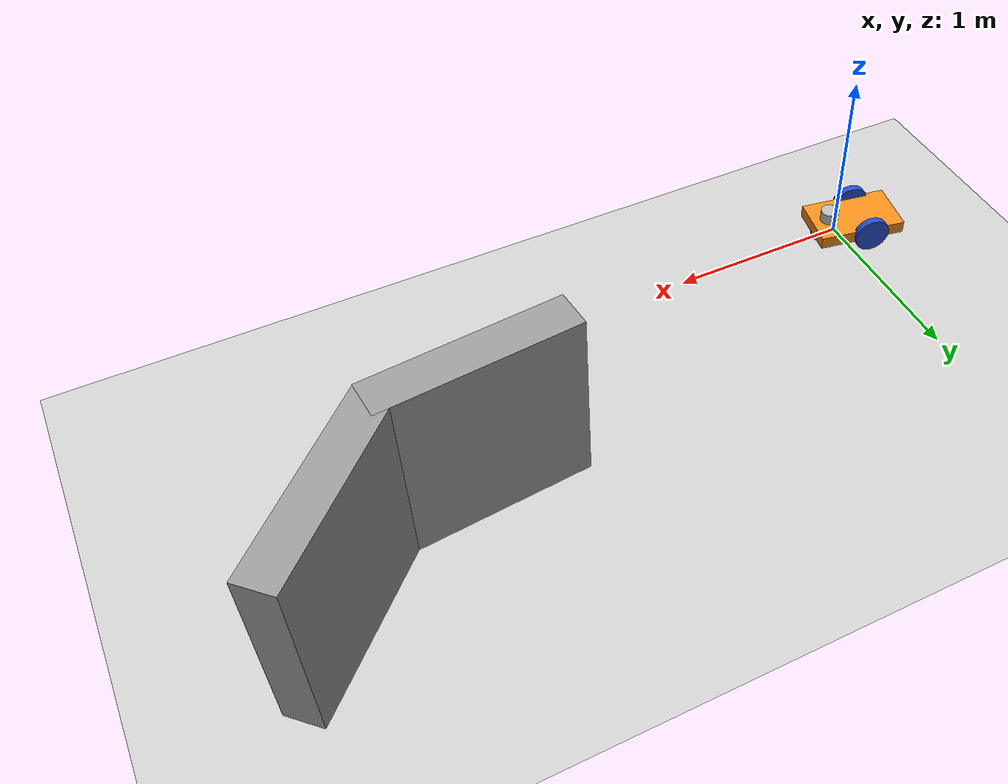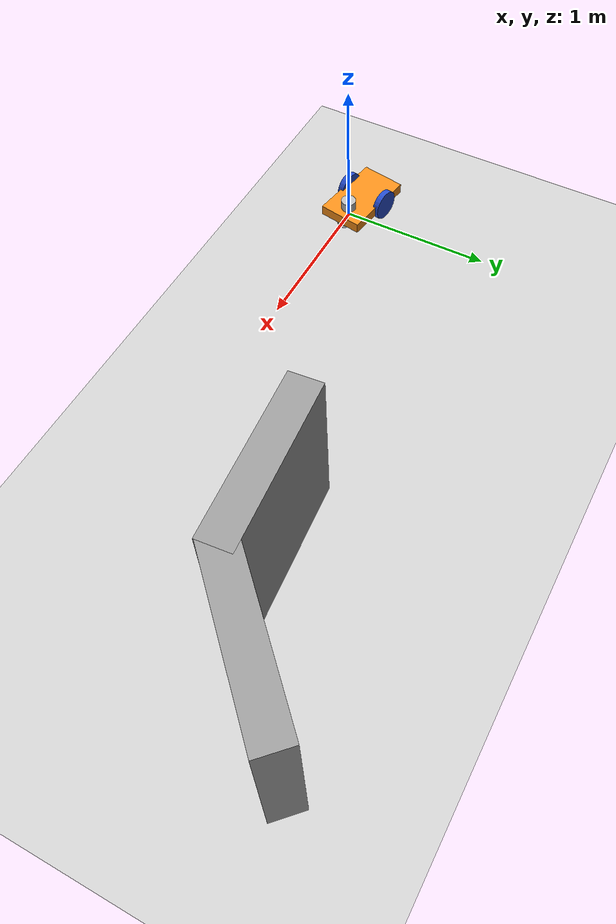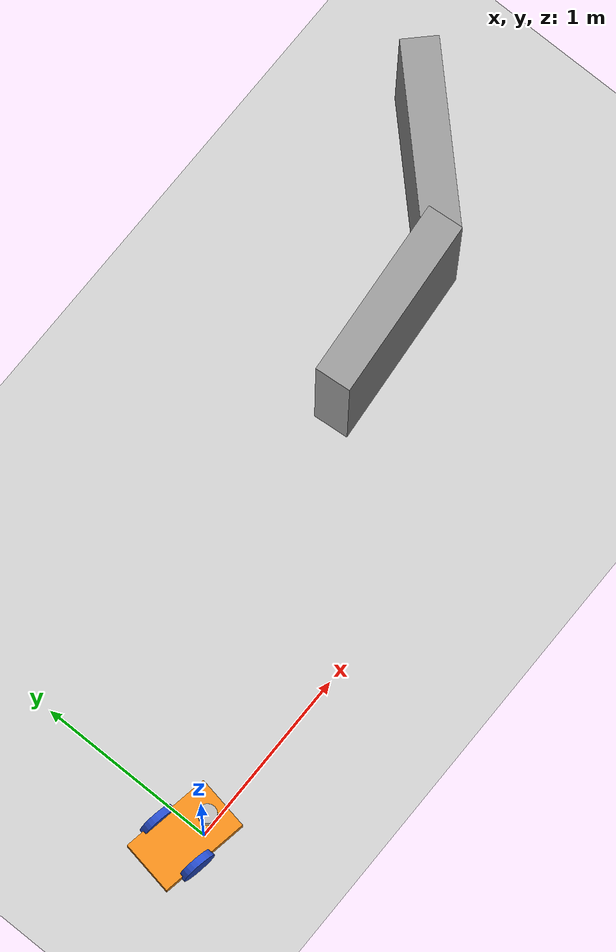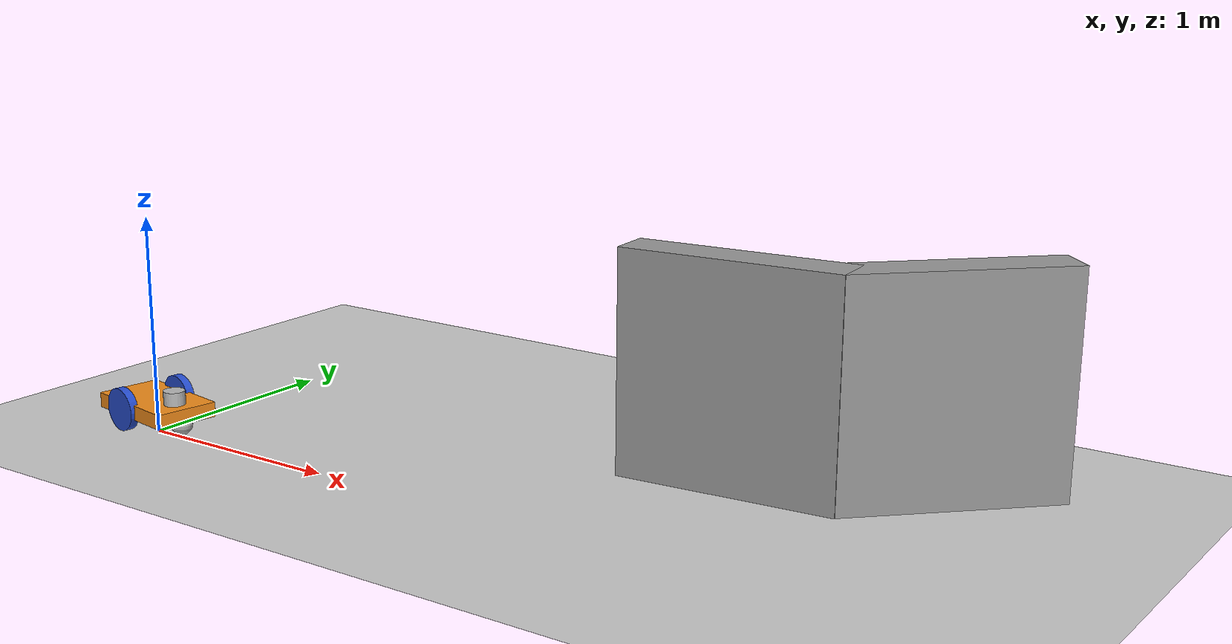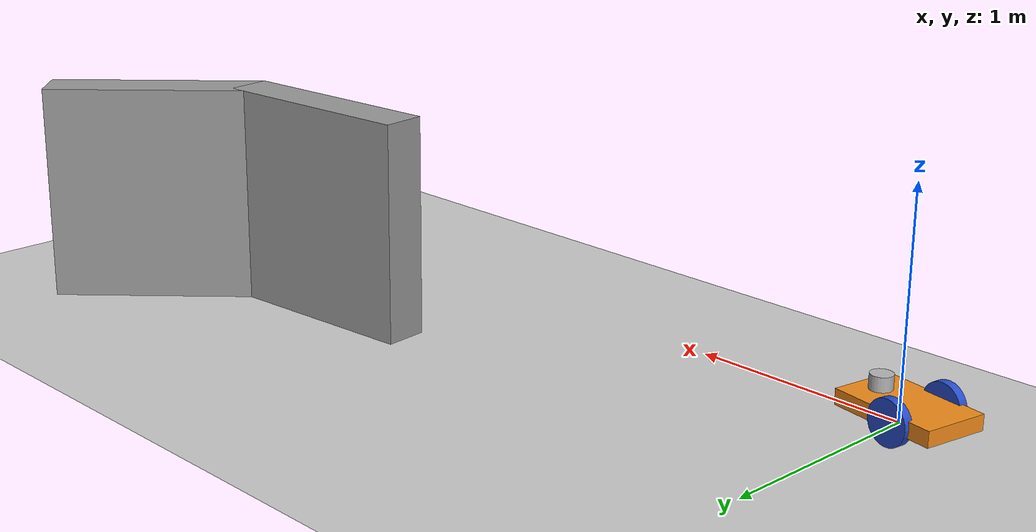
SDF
<sdf version="1.6">
 <world name="default">
  <light name="sun" type="directional">
   <pose>0 0 10 0 -0 0</pose>
   <diffuse>0.8 0.8 0.8 1</diffuse>
   <specular>0.2 0.2 0.2 1</specular>
   <attenuation>
    <range>1000</range>
    <constant>0.9</constant>
    <linear>0.01</linear>
    <quadratic>0.001</quadratic>
   </attenuation>
   <direction>-0.5 0.1 -0.9</direction>
  </light>
  <model name="ground_plane">
   <static>1</static>
   <link name="link">
    <collision name="collision">
     <geometry><plane><normal>0 0 1</normal><size>100 100</size></plane></geometry>
     <surface>
      <contact><collide_bitmask>65535</collide_bitmask></contact>
      <friction><ode><mu>100</mu><mu2>50</mu2></ode></friction>
     </surface>
    </collision>
    <visual name="visual">
     <cast_shadows>0</cast_shadows>
     <geometry><plane><normal>0 0 1</normal><size>100 100</size></plane></geometry>
     <material>
      <script><uri>file://media/materials/scripts/gazebo.material</uri><name>Gazebo/Grey</name></script>
     </material>
    </visual>
   </link>
  </model>
  <gravity>0 0 -9.8</gravity>
  <magnetic_field>6e-06 2.3e-05 -4.2e-05</magnetic_field>
  <atmosphere type="adiabatic"/>
  <physics name="default_physics" default="0" type="ode">
   <max_step_size>0.001</max_step_size>
   <real_time_factor>1</real_time_factor>
   <real_time_update_rate>1000</real_time_update_rate>
  </physics>
  <scene><ambient>0.4 0.4 0.4 1</ambient><background>0.7 0.7 0.7 1</background><shadows>1</shadows></scene>
  <spherical_coordinates>
   <surface_model>EARTH_WGS84</surface_model>
   <latitude_deg>0</latitude_deg>
   <longitude_deg>0</longitude_deg>
   <elevation>0</elevation>
   <heading_deg>0</heading_deg>
  </spherical_coordinates>
  <model name="ag2">
   <link name="link_chassis">
    <inertial>
     <pose>0 0 0.1 0 -0 0</pose>
     <mass>5</mass>
     <inertia>
      <ixx>0.0395417</ixx>
      <ixy>0</ixy>
      <ixz>0</ixz>
      <iyy>0.106208</iyy>
      <iyz>0</iyz>
      <izz>0.106208</izz>
     </inertia>
    </inertial>
    <collision name="link_chassis_fixed_joint_lump__collision_chassis_collision">
     <geometry><box><size>0.5 0.3 0.07</size></box></geometry>
    </collision>
    <collision name="link_chassis_fixed_joint_lump__caster_front_collision_collision_1">
     <pose>0.35 0 -0.05 0 -0 0</pose>
     <geometry><sphere><radius>0.05</radius></sphere></geometry>
    </collision>
    <collision name="link_chassis_fixed_joint_lump__sensor_laser_collision_2">
     <pose>0.15 0 0.05 0 -0 0</pose>
     <geometry><cylinder><length>0.1</length><radius>0.05</radius></cylinder></geometry>
    </collision>
    <visual name="link_chassis_visual">
     <geometry><box><size>0.5 0.3 0.07</size></box></geometry>
     <material>
      <script><name>Gazebo/Orange</name><uri>file://media/materials/scripts/gazebo.material</uri></script>
     </material>
    </visual>
    <visual name="link_chassis_fixed_joint_lump__caster_front_visual_visual_1">
     <pose>0.2 0 -0.05 0 -0 0</pose>
     <geometry><sphere><radius>0.05</radius></sphere></geometry>
    </visual>
    <visual name="link_chassis_fixed_joint_lump__sensor_laser_visual_2">
     <pose>0.15 0 0.05 0 -0 0</pose>
     <geometry><cylinder><length>0.1</length><radius>0.05</radius></cylinder></geometry>
     <material><script><uri>__default__</uri><name>__default__</name></script></material>
    </visual>
    <sensor name="head_hokuyo_sensor" type="ray">
     <visualize>0</visualize>
     <update_rate>20</update_rate>
     <ray>
      <scan>
       <horizontal>
        <samples>720</samples>
        <resolution>1</resolution>
        <min_angle>-1.5708</min_angle>
        <max_angle>1.5708</max_angle>
       </horizontal>
       <vertical><samples>1</samples><min_angle>0</min_angle><max_angle>0</max_angle></vertical>
      </scan>
      <range><min>0.1</min><max>10</max><resolution>0.01</resolution></range>
      <noise><type>gaussian</type><mean>0</mean><stddev>0.01</stddev></noise>
     </ray>
     <plugin name="gazebo_ros_head_hokuyo_controller" filename="libgazebo_ros_laser.so">
      <topicName>/m2wr/laser/scan</topicName>
      <frameName>sensor_laser</frameName>
      <robotNamespace>/</robotNamespace>
     </plugin>
     <pose>0.15 0 0.05 0 -0 0</pose>
    </sensor>
   </link>
   <link name="link_left_wheel">
    <pose>-0.05 -0.15 0 0 -0 0</pose>
    <inertial>
     <pose>0 0 0 -0 1.5707 1.5707</pose>
     <mass>0.2</mass>
     <inertia>
      <ixx>0.000526667</ixx>
      <ixy>0</ixy>
      <ixz>0</ixz>
      <iyy>0.000526667</iyy>
      <iyz>0</iyz>
      <izz>0.001</izz>
     </inertia>
    </inertial>
    <collision name="link_left_wheel_fixed_joint_lump__link_right_wheel_collision_collision">
     <pose>0 0 0 -0 1.5707 1.5707</pose>
     <geometry><cylinder><length>0.04</length><radius>0.1</radius></cylinder></geometry>
    </collision>
    <visual name="link_left_wheel_visual_visual">
     <pose>0 0 0 -0 1.5707 1.5707</pose>
     <geometry><cylinder><length>0.04</length><radius>0.1</radius></cylinder></geometry>
     <material>
      <script><name>Gazebo/Blue</name><uri>file://media/materials/scripts/gazebo.material</uri></script>
     </material>
    </visual>
   </link>
   <joint name="joint_left_wheel" type="revolute">
    <child>link_left_wheel</child>
    <parent>link_chassis</parent>
    <axis>
     <xyz>0 1 0</xyz>
     <limit><lower>-1e+16</lower><upper>1e+16</upper></limit>
     <dynamics><spring_reference>0</spring_reference><spring_stiffness>0</spring_stiffness></dynamics>
     <use_parent_model_frame>1</use_parent_model_frame>
    </axis>
   </joint>
   <link name="link_right_wheel">
    <pose>-0.05 0.15 0 0 -0 0</pose>
    <inertial>
     <pose>0 0 0 -0 1.5707 1.5707</pose>
     <mass>0.2</mass>
     <inertia>
      <ixx>0.000526667</ixx>
      <ixy>0</ixy>
      <ixz>0</ixz>
      <iyy>0.000526667</iyy>
      <iyz>0</iyz>
      <izz>0.001</izz>
     </inertia>
    </inertial>
    <collision name="link_right_wheel_collision_collision">
     <pose>0 0 0 -0 1.5707 1.5707</pose>
     <geometry><cylinder><length>0.04</length><radius>0.1</radius></cylinder></geometry>
    </collision>
    <visual name="link_right_wheel_visual_visual">
     <pose>0 0 0 -0 1.5707 1.5707</pose>
     <geometry><cylinder><length>0.04</length><radius>0.1</radius></cylinder></geometry>
     <material>
      <script><name>Gazebo/Blue</name><uri>file://media/materials/scripts/gazebo.material</uri></script>
     </material>
    </visual>
   </link>
   <joint name="joint_right_wheel" type="revolute">
    <child>link_right_wheel</child>
    <parent>link_chassis</parent>
    <axis>
     <xyz>0 1 0</xyz>
     <limit><lower>-1e+16</lower><upper>1e+16</upper></limit>
     <dynamics><spring_reference>0</spring_reference><spring_stiffness>0</spring_stiffness></dynamics>
     <use_parent_model_frame>1</use_parent_model_frame>
    </axis>
   </joint>
   <static>0</static>
   <plugin name="differential_drive_controller" filename="libgazebo_ros_diff_drive.so">
    <alwaysOn>true</alwaysOn>
    <updateRate>20</updateRate>
    <leftJoint>joint_left_wheel</leftJoint>
    <rightJoint>joint_right_wheel</rightJoint>
    <wheelSeparation>0.4</wheelSeparation>
    <wheelDiameter>0.2</wheelDiameter>
    <torque>0.1</torque>
    <commandTopic>cmd_vel</commandTopic>
    <odometryTopic>odom</odometryTopic>
    <odometryFrame>odom</odometryFrame>
    <robotBaseFrame>link_chassis</robotBaseFrame>
    <robotNamespace>/</robotNamespace>
   </plugin>
   <pose>-0.073727 0.061133 0.099998 -3e-06 -7e-06 -0.173092</pose>
  </model>
  <model name="unit_box">
   <link name="link">
    <inertial>
     <mass>0</mass>
     <inertia><ixx>0</ixx><ixy>0</ixy><ixz>0</ixz><iyy>0</iyy><iyz>0</iyz><izz>0</izz></inertia>
    </inertial>
    <visual name="visual">
     <geometry><box><size>1 0.2 1</size></box></geometry>
     <material>
      <script><name>Gazebo/Grey</name><uri>file://media/materials/scripts/gazebo.material</uri></script>
      <shader type="pixel"><normal_map>__default__</normal_map></shader>
      <ambient>0.3 0.3 0.3 1</ambient>
      <diffuse>0.7 0.7 0.7 1</diffuse>
      <specular>0.01 0.01 0.01 1</specular>
      <emissive>0 0 0 1</emissive>
     </material>
    </visual>
    <collision name="collision">
     <geometry><box><size>1 1 1</size></box></geometry>
     <surface>
      <friction>
       <ode><mu>1</mu><mu2>1</mu2><fdir1>0 0 0</fdir1><slip1>0</slip1><slip2>0</slip2></ode>
       <torsional>
        <coefficient>1</coefficient>
        <patch_radius>0</patch_radius>
        <surface_radius>0</surface_radius>
        <use_patch_radius>1</use_patch_radius>
        <ode><slip>0</slip></ode>
       </torsional>
      </friction>
      <bounce><restitution_coefficient>0</restitution_coefficient><threshold>1e+06</threshold></bounce>
      <contact>
       <collide_without_contact>0</collide_without_contact>
       <collide_without_contact_bitmask>1</collide_without_contact_bitmask>
       <collide_bitmask>1</collide_bitmask>
       <ode>
        <soft_cfm>0</soft_cfm>
        <soft_erp>0.2</soft_erp>
        <kp>1e+13</kp>
        <kd>1</kd>
        <max_vel>0.01</max_vel>
        <min_depth>0</min_depth>
       </ode>
       <bullet>
        <split_impulse>1</split_impulse>
        <split_impulse_penetration_threshold>-0.01</split_impulse_penetration_threshold>
        <soft_cfm>0</soft_cfm>
        <soft_erp>0.2</soft_erp>
        <kp>1e+13</kp>
        <kd>1</kd>
       </bullet>
      </contact>
     </surface>
    </collision>
   </link>
   <static>0</static>
   <pose>2.52867 0.874661 0.5 0 -0 0.087571</pose>
  </model>
  <model name="unit_box_clone">
   <link name="unit_box_clone::unit_box_clone::unit_box_clone::link">
    <pose>-0.22797 0.281008 0 -0 -0 -0.033994</pose>
    <inertial>
     <mass>0</mass>
     <inertia><ixx>0</ixx><ixy>0</ixy><ixz>0</ixz><iyy>0</iyy><iyz>0</iyz><izz>0</izz></inertia>
    </inertial>
    <visual name="visual">
     <geometry><box><size>1 0.2 1</size></box></geometry>
     <material>
      <script><name>Gazebo/Grey</name><uri>file://media/materials/scripts/gazebo.material</uri></script>
      <shader type="pixel"><normal_map>__default__</normal_map></shader>
      <ambient>0.3 0.3 0.3 1</ambient>
      <diffuse>0.7 0.7 0.7 1</diffuse>
      <specular>0.01 0.01 0.01 1</specular>
      <emissive>0 0 0 1</emissive>
     </material>
     <pose>0 0 0 0 -0 0.7</pose>
    </visual>
    <collision name="collision">
     <geometry><box><size>1 1 1</size></box></geometry>
     <surface>
      <friction>
       <ode><mu>1</mu><mu2>1</mu2><fdir1>0 0 0</fdir1><slip1>0</slip1><slip2>0</slip2></ode>
       <torsional>
        <coefficient>1</coefficient>
        <patch_radius>0</patch_radius>
        <surface_radius>0</surface_radius>
        <use_patch_radius>1</use_patch_radius>
        <ode><slip>0</slip></ode>
       </torsional>
      </friction>
      <bounce><restitution_coefficient>0</restitution_coefficient><threshold>1e+06</threshold></bounce>
      <contact>
       <collide_without_contact>0</collide_without_contact>
       <collide_without_contact_bitmask>1</collide_without_contact_bitmask>
       <collide_bitmask>1</collide_bitmask>
       <ode>
        <soft_cfm>0</soft_cfm>
        <soft_erp>0.2</soft_erp>
        <kp>1e+13</kp>
        <kd>1</kd>
        <max_vel>0.01</max_vel>
        <min_depth>0</min_depth>
       </ode>
       <bullet>
        <split_impulse>1</split_impulse>
        <split_impulse_penetration_threshold>-0.01</split_impulse_penetration_threshold>
        <soft_cfm>0</soft_cfm>
        <soft_erp>0.2</soft_erp>
        <kp>1e+13</kp>
        <kd>1</kd>
       </bullet>
      </contact>
     </surface>
    </collision>
   </link>
   <static>0</static>
   <pose>3.57428 0.993938 0.499998 2e-06 -1e-06 0.12164</pose>
  </model>
 </world>
</sdf>
